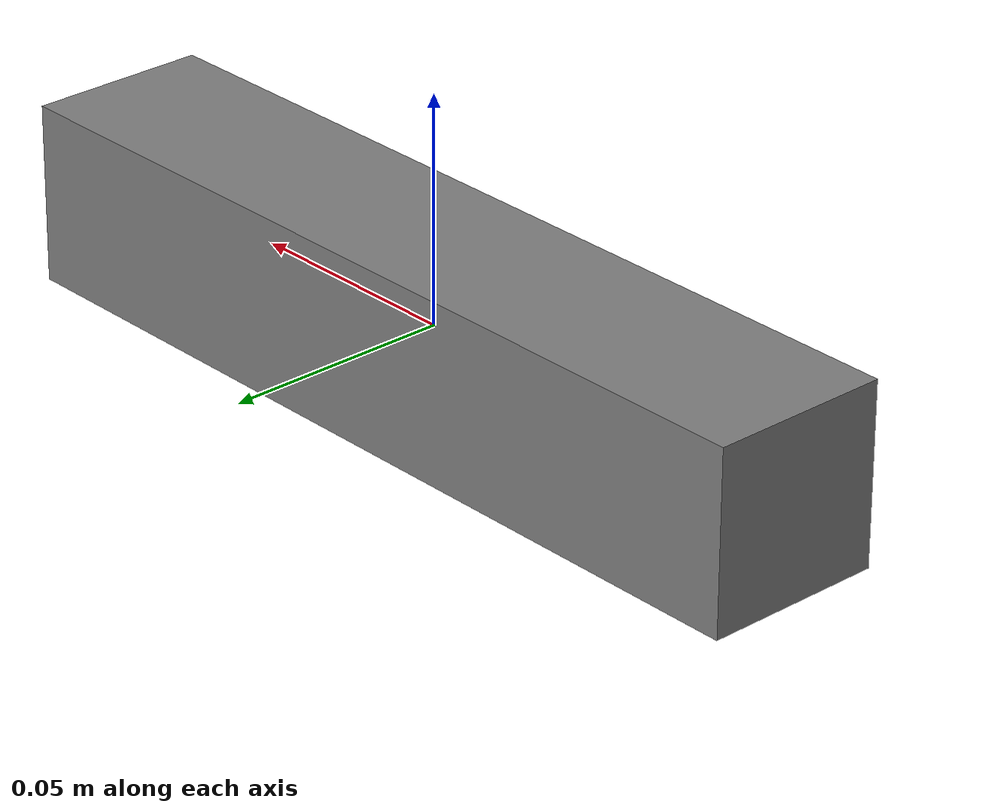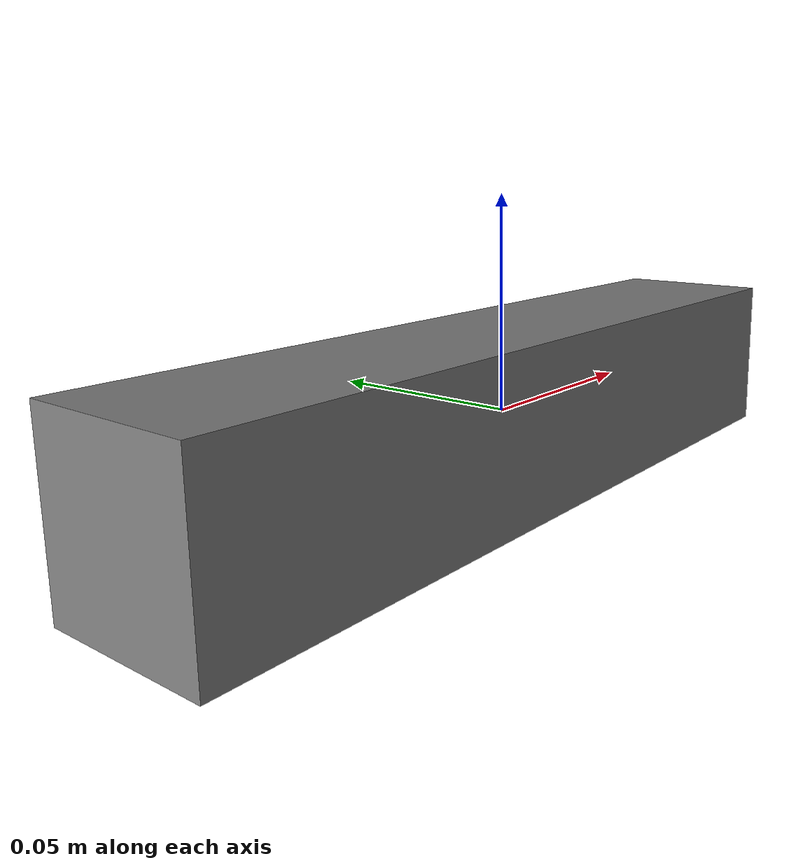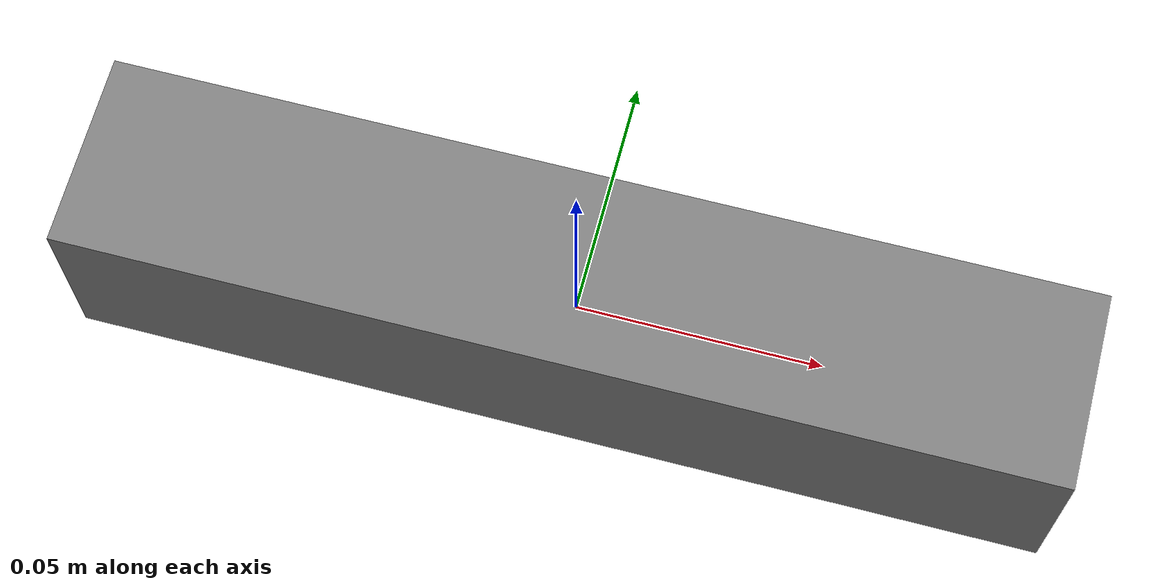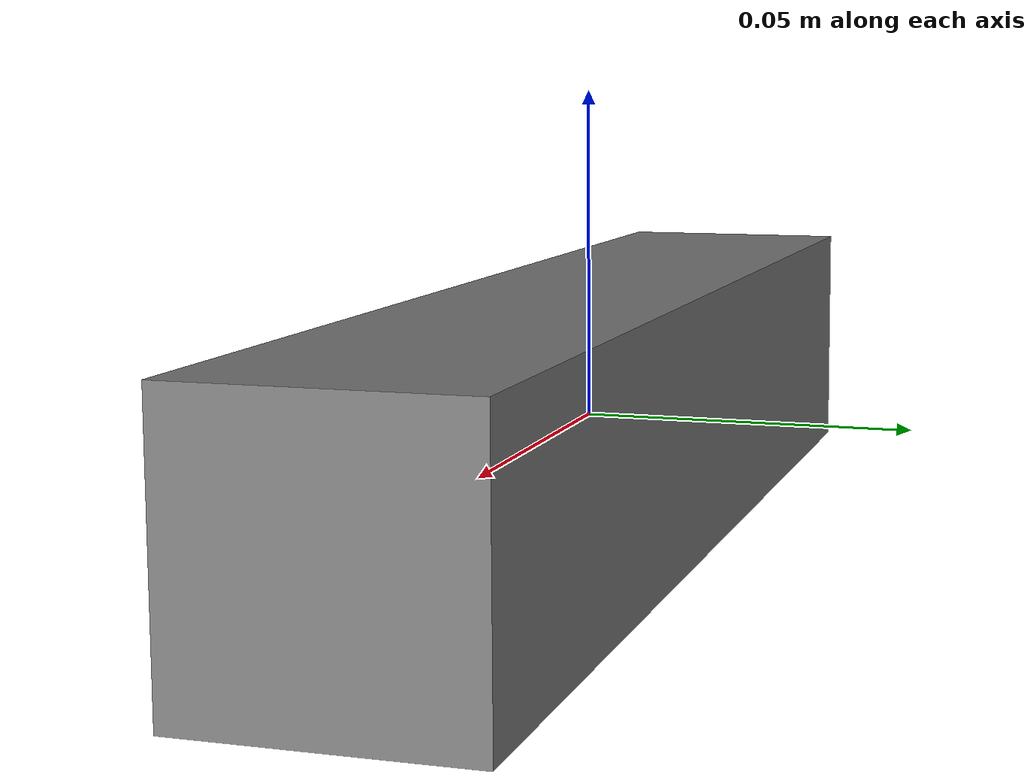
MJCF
<mujoco>
    <compiler angle="radian" inertiafromgeom="auto" inertiagrouprange="4 5"/>
    <asset>
      <material name="stick_col" rgba="0.3 0.3 1.0 0.5" shininess="0" specular="0"/>
      <material name="stick_blue" rgba=".15 .3 .5 1" shininess="1" reflectance=".7" specular=".5"/>

      <mesh file="../objects/meshes/stick/stick.stl" name="stick"/>

    </asset>

    <default>
      <default class="stick_base">
          <joint armature="0.001" damping="2" limited="true"/>
          <geom conaffinity="0" contype="0" group="1" type="mesh"/>
          <position ctrllimited="true" ctrlrange="0 1.57"/>
          <default class="stick_col">
              <geom conaffinity="1" condim="4" contype="1" group="4" material="stick_col" solimp="0.998 0.998 0.001" solref="0.02 1"/>
          </default>
      </default>
    </default>

    <worldbody>

      <body name="stick" pos="0 0 0">
        <freejoint/>
        <body childclass="stick_base">
            <geom size="0.1 0.02 0.02" type="box" mass=".02"/>
            <geom class="stick_col" size="0.1 0.02 0.02" type="box" mass=".02"/>
            <body name="stick_end" pos="-0.1 0 0"></body>
        </body>
      </body>
    </worldbody>

</mujoco>
